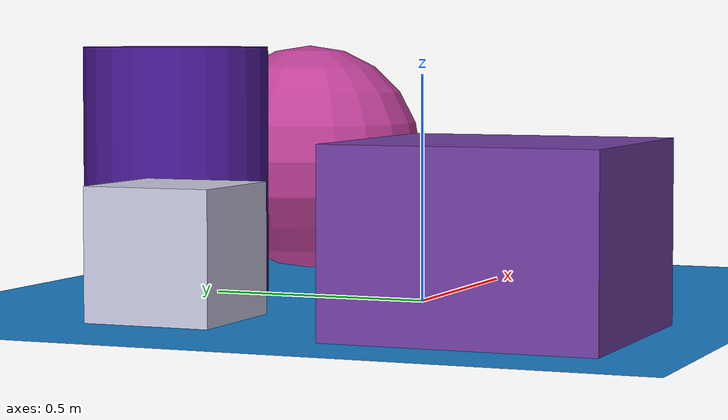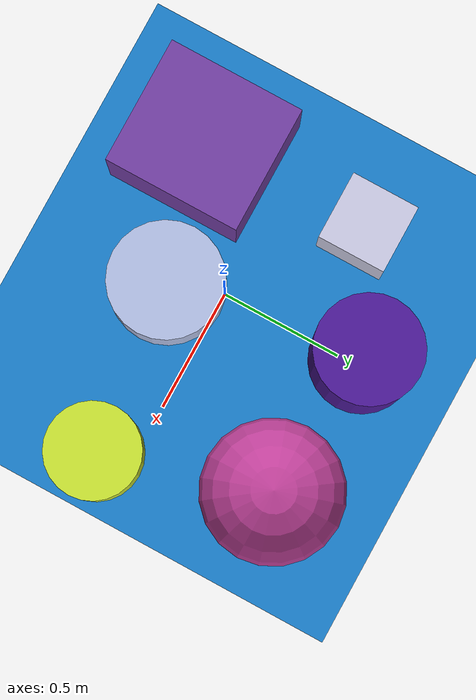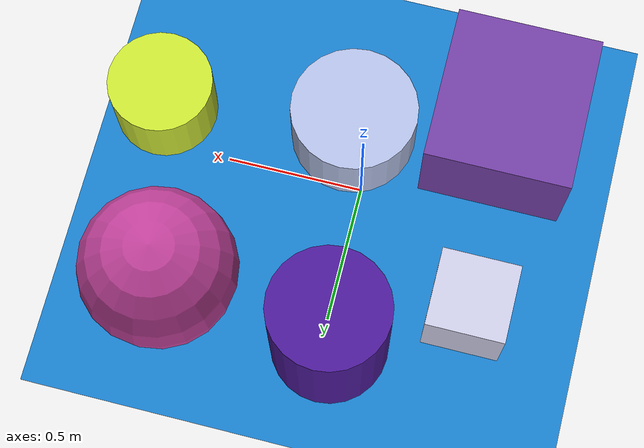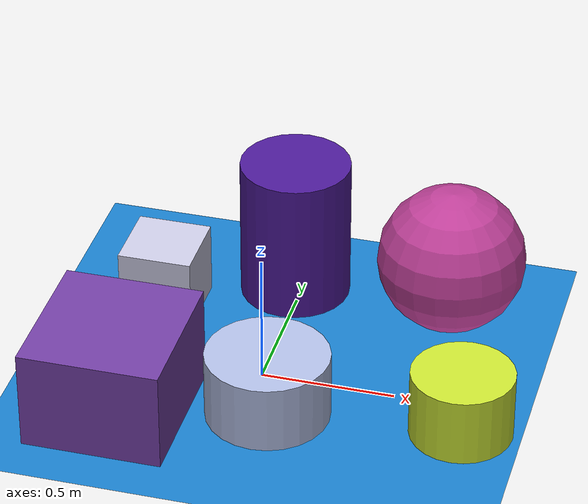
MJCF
<mujoco>
   <asset>
<texture type="skybox" builtin="gradient" rgb1="0.3 0.3 0.9" rgb2="0.6 0.6 0.0" width="256" height="256"/>
<texture name="flat_0" builtin="flat" rgb1="0.3 0.1 0.6" rgb2="0.3 0.1 0.6"  width="200" height="200"/>
<texture name="checker_1" builtin="checker" rgb1="0.6 0.2 0.5" rgb2="0.9 0.3 0.7" width="200" height="200"/>
<texture name="flat_2" builtin="flat" rgb1="0.8 0.9 0.2" rgb2="0.8 0.9 0.2"  width="200" height="200"/>
<texture name="flat_3" builtin="flat" rgb1="0.8 0.8 0.9" rgb2="0.8 0.8 0.9"  width="200" height="200"/>
<texture name="checker_4" builtin="checker" rgb1="0.7 0.1 0.9" rgb2="0.2 0.4 0.4" width="200" height="200"/>
<texture name="gradient_5" builtin="gradient" rgb1="0.4 0.9 0.9" rgb2="1.0 0.6 0.9" width="200" height="200"/><material name="flat_0_mat" reflectance="0" texture="flat_0" texuniform="true"/>
<material name="checker_1_mat" reflectance="0" texrepeat="2 2" texture="checker_1" texuniform="false" />
<material name="flat_2_mat" reflectance="0" texture="flat_2" texuniform="true"/>
<material name="flat_3_mat" reflectance="0" texture="flat_3" texuniform="true"/>
<material name="checker_4_mat" reflectance="0" texrepeat="4 4" texture="checker_4" texuniform="false" />
<material name="gradient_5_mat" reflectance="0" texture="gradient_5" texuniform="true"/>
   </asset>

   <worldbody>
      <light diffuse=".9 .9 .9" pos="0 0 3" dir="0 0 -1"/>
     <geom type="plane" size="1 1 0.1" rgba="0.1 0.5 0.8 1"/>
<geom type="cylinder" pos="-0.03 0.59 0.28" size="0.21 0.28 0.28" material="flat_0_mat" />
<geom type="sphere" pos="0.59 0.53 0.28" size="0.28 0.28 0.28" material="checker_1_mat" />
<geom type="cylinder" pos="0.78 -0.14 0.13" size="0.19 0.13 0.13" material="flat_2_mat" />
<geom type="box" pos="-0.48 0.36 0.14" size="0.14 0.14 0.14" material="flat_3_mat" />
<geom type="box" pos="-0.46 -0.34 0.19" size="0.26 0.28 0.19" material="checker_4_mat" />
<geom type="cylinder" pos="0.08 -0.21 0.13" size="0.23 0.13 0.13" material="gradient_5_mat" /><camera euler="60 0 180" fovy="60" name="camera1" pos="0 -1.5 1"></camera>   </worldbody>
</mujoco>
